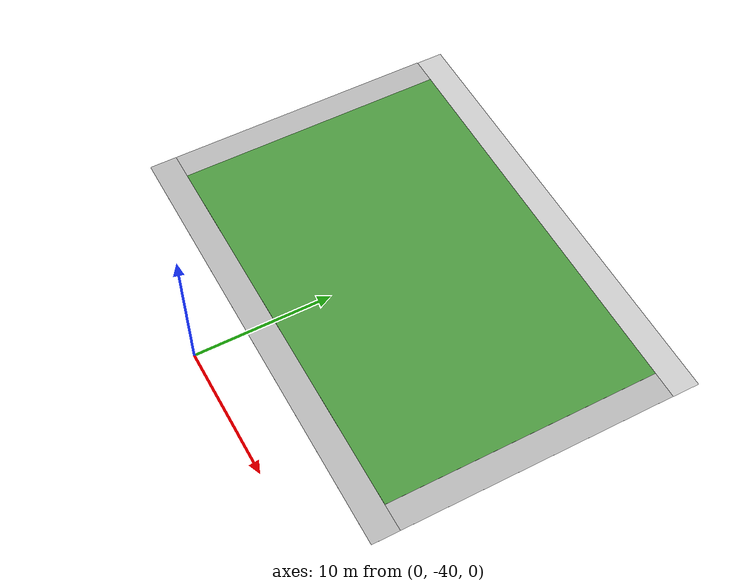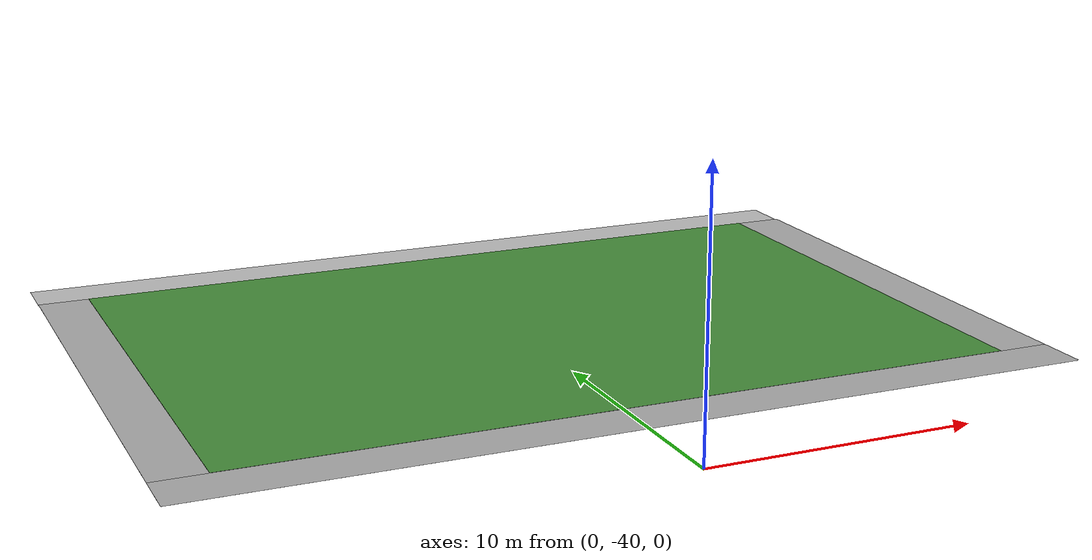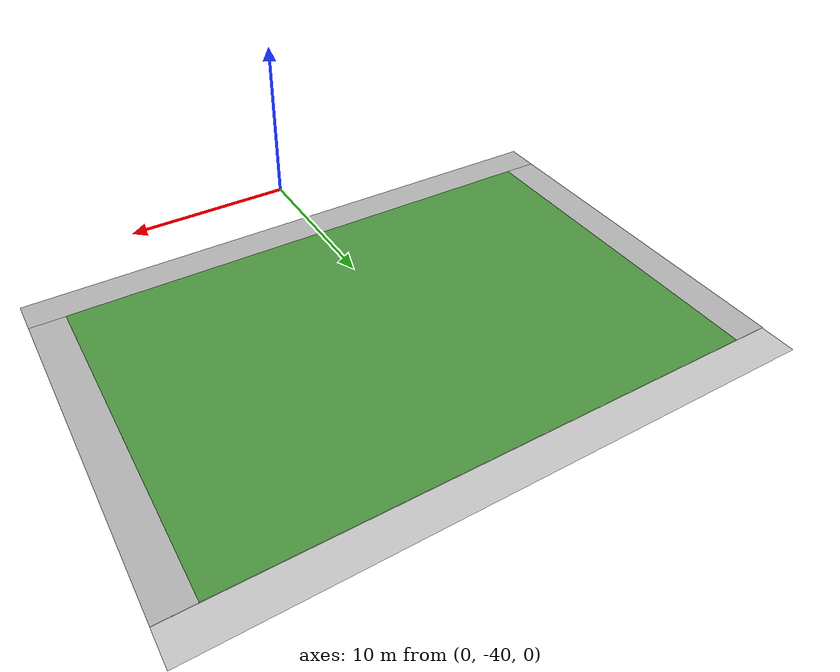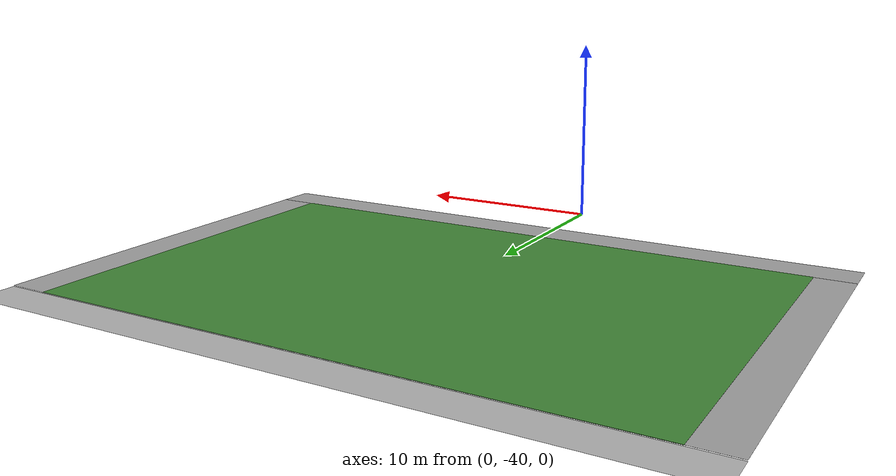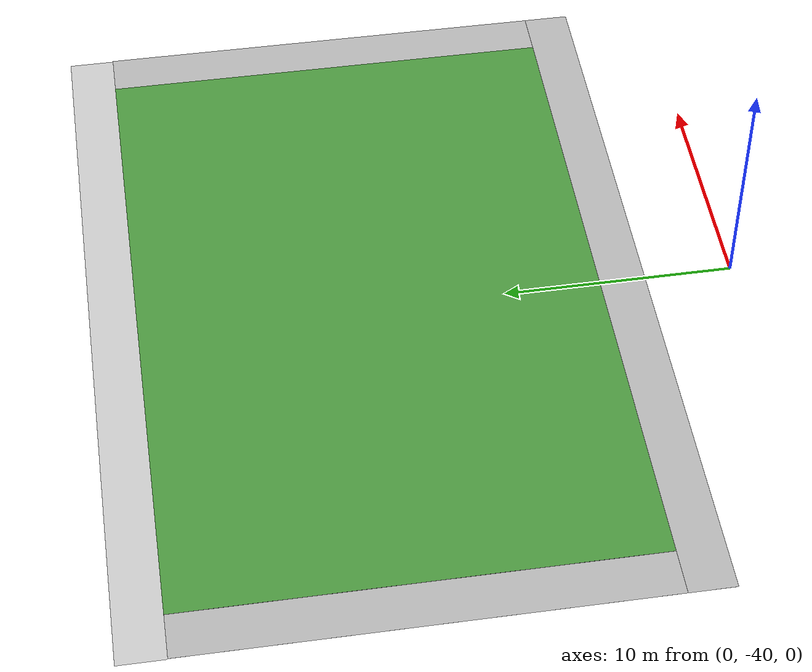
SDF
<?xml version='1.0'?>
<sdf version='1.7'>
  <model name='Untitled_malakia'>
    <model name='robocup_3d_field'>
      <static>1</static>
      <link name='field'>
        <pose>0 0 0.01 0 -0 0</pose>
        <collision name='collision'>
          <geometry>
            <plane>
              <normal>0 0 1</normal>
              <size>30 20</size>
            </plane>
          </geometry>
          <surface>
            <friction>
              <ode>
                <mu>100</mu>
                <mu2>50</mu2>
              </ode>
            </friction>
          </surface>
        </collision>
        <visual name='base1'>
          <pose>0 11 0.001 0 -0 0</pose>
          <cast_shadows>0</cast_shadows>
          <geometry>
            <plane>
              <normal>0 0 1</normal>
              <size>34 2</size>
            </plane>
          </geometry>
          <material>
            <script>
              <uri>https://fuel.ignitionrobotics.org/1.0/nicolas/models/robocup 3d simulation field/1/files/materials/scripts/</uri>
              <uri>https://fuel.ignitionrobotics.org/1.0/nicolas/models/robocup 3d simulation field/1/files/materials/textures/</uri>
              <name>RoboCup/FieldBorder</name>
            </script>
          </material>
        </visual>
        <visual name='base2'>
          <pose>0 -11 0.001 0 -0 0</pose>
          <cast_shadows>0</cast_shadows>
          <geometry>
            <plane>
              <normal>0 0 1</normal>
              <size>34 2</size>
            </plane>
          </geometry>
          <material>
            <script>
              <uri>https://fuel.ignitionrobotics.org/1.0/nicolas/models/robocup 3d simulation field/1/files/materials/scripts/</uri>
              <uri>https://fuel.ignitionrobotics.org/1.0/nicolas/models/robocup 3d simulation field/1/files/materials/textures/</uri>
              <name>RoboCup/FieldBorder</name>
            </script>
          </material>
        </visual>
        <visual name='base3'>
          <pose>16 0 0.001 0 -0 0</pose>
          <cast_shadows>0</cast_shadows>
          <geometry>
            <plane>
              <normal>0 0 1</normal>
              <size>2 20</size>
            </plane>
          </geometry>
          <material>
            <script>
              <uri>https://fuel.ignitionrobotics.org/1.0/nicolas/models/robocup 3d simulation field/1/files/materials/scripts/</uri>
              <uri>https://fuel.ignitionrobotics.org/1.0/nicolas/models/robocup 3d simulation field/1/files/materials/textures/</uri>
              <name>RoboCup/FieldBorder</name>
            </script>
          </material>
        </visual>
        <visual name='base4'>
          <pose>-16 0 0.001 0 -0 0</pose>
          <cast_shadows>0</cast_shadows>
          <geometry>
            <plane>
              <normal>0 0 1</normal>
              <size>2 20</size>
            </plane>
          </geometry>
          <material>
            <script>
              <uri>https://fuel.ignitionrobotics.org/1.0/nicolas/models/robocup 3d simulation field/1/files/materials/scripts/</uri>
              <uri>https://fuel.ignitionrobotics.org/1.0/nicolas/models/robocup 3d simulation field/1/files/materials/textures/</uri>
              <name>RoboCup/FieldBorder</name>
            </script>
          </material>
        </visual>
        <visual name='carpet'>
          <cast_shadows>0</cast_shadows>
          <geometry>
            <plane>
              <normal>0 0 1</normal>
              <size>30 20</size>
            </plane>
          </geometry>
          <material>
            <script>
              <uri>https://fuel.ignitionrobotics.org/1.0/nicolas/models/robocup 3d simulation field/1/files/materials/scripts/</uri>
              <uri>https://fuel.ignitionrobotics.org/1.0/nicolas/models/robocup 3d simulation field/1/files/materials/textures/</uri>
              <name>RoboCup/Grass</name>
            </script>
          </material>
        </visual>
      </link>
      <pose>0.598914 -24.1971 0 0 -0 0</pose>
    </model>
    <static>0</static>
    <allow_auto_disable>1</allow_auto_disable>
  </model>
</sdf>
